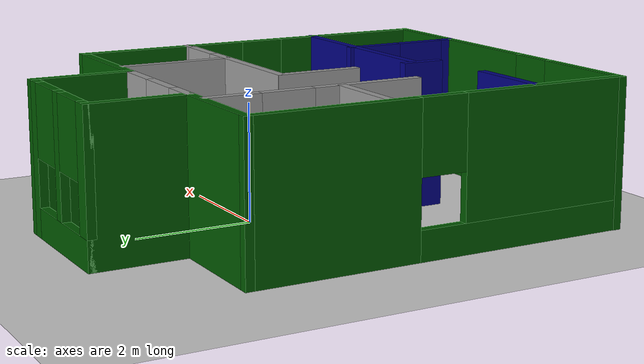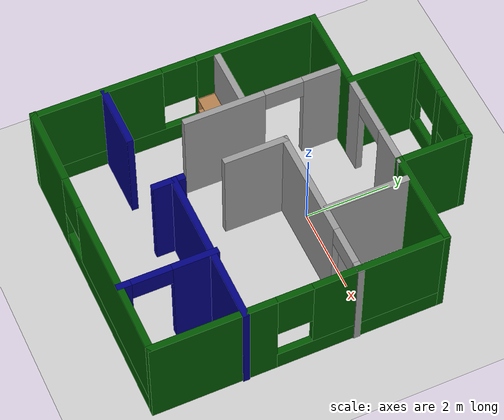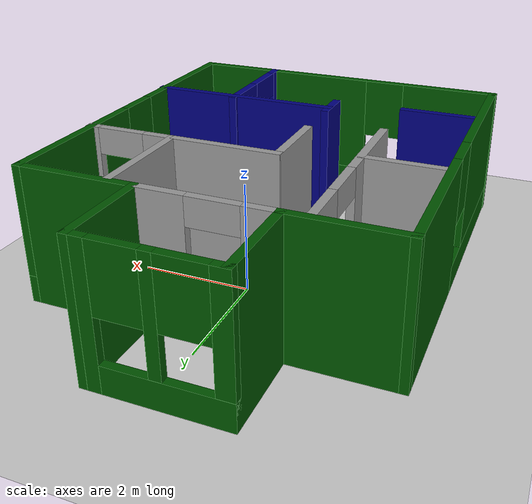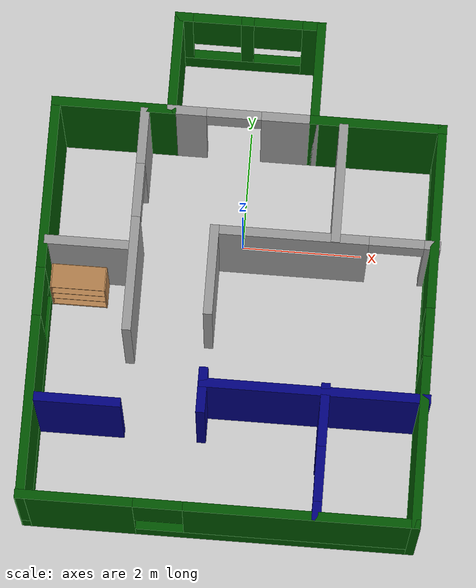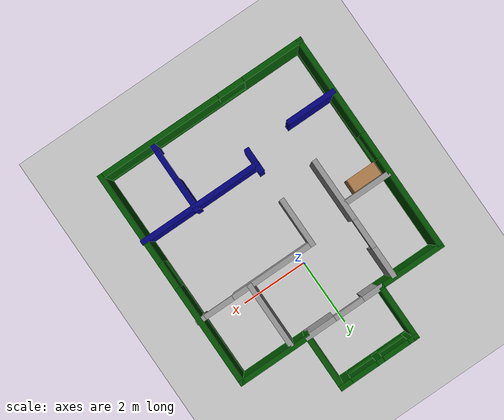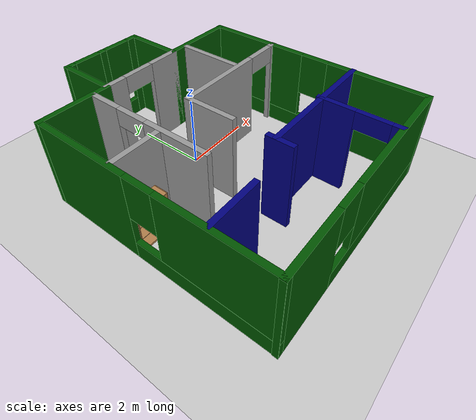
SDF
<sdf version="1.6">
 <world name="default">
  <model name="ground_plane">
   <static>1</static>
   <link name="link">
    <collision name="collision">
     <geometry><plane><normal>0 0 1</normal><size>100 100</size></plane></geometry>
     <surface>
      <contact><collide_bitmask>65535</collide_bitmask></contact>
      <friction><ode><mu>100</mu><mu2>50</mu2></ode></friction>
     </surface>
    </collision>
    <visual name="visual">
     <cast_shadows>0</cast_shadows>
     <geometry><plane><normal>0 0 1</normal><size>100 100</size></plane></geometry>
     <material>
      <script><uri>file://media/materials/scripts/gazebo.material</uri><name>Gazebo/Grey</name></script>
     </material>
    </visual>
   </link>
  </model>
  <model name="house">
   <pose>-0.016749 -0.865933 0 0 -0 0</pose>
   <link name="Wall_10">
    <collision name="Wall_10_Collision">
     <geometry><box><size>2.25 0.15 2.5</size></box></geometry>
     <pose>0 0 1.25 0 -0 0</pose>
    </collision>
    <visual name="Wall_10_Visual">
     <pose>0 0 1.25 0 -0 0</pose>
     <geometry><box><size>2.25 0.15 2.5</size></box></geometry>
     <material>
      <script><uri>file://media/materials/scripts/gazebo.material</uri><name>Gazebo/Grey</name></script>
      <ambient>0 0.333333 0 1</ambient>
     </material>
     <meta><layer>0</layer></meta>
    </visual>
    <pose>2.11595 2.48106 0 0 -0 3.14159</pose>
   </link>
   <link name="Wall_11">
    <collision name="Wall_11_Collision">
     <geometry><box><size>1.75 0.15 2.5</size></box></geometry>
     <pose>0 0 1.25 0 -0 0</pose>
    </collision>
    <visual name="Wall_11_Visual">
     <pose>0 0 1.25 0 -0 0</pose>
     <geometry><box><size>1.75 0.15 2.5</size></box></geometry>
     <material>
      <script><uri>file://media/materials/scripts/gazebo.material</uri><name>Gazebo/Grey</name></script>
      <ambient>0 0.333333 0 1</ambient>
     </material>
     <meta><layer>0</layer></meta>
    </visual>
    <pose>1.06595 3.28106 0 0 -0 1.5708</pose>
   </link>
   <link name="Wall_12">
    <pose>-0.10905 4.08106 0 0 -0 3.14159</pose>
    <visual name="Wall_12_Visual_0">
     <pose>-1.05634 0 1.25 0 -0 0</pose>
     <geometry><box><size>0.387325 0.15 2.5</size></box></geometry>
     <material>
      <script><uri>file://media/materials/scripts/gazebo.material</uri><name>Gazebo/Grey</name></script>
      <ambient>0 0.333333 0 1</ambient>
     </material>
     <meta><layer>0</layer></meta>
    </visual>
    <collision name="Wall_12_Collision_0">
     <geometry><box><size>0.387325 0.15 2.5</size></box></geometry>
     <pose>-1.05634 0 1.25 0 -0 0</pose>
    </collision>
    <visual name="Wall_12_Visual_1">
     <pose>0.193662 0 0.25 0 -0 0</pose>
     <geometry><box><size>2.11267 0.15 0.5</size></box></geometry>
     <material>
      <script><uri>file://media/materials/scripts/gazebo.material</uri><name>Gazebo/Grey</name></script>
      <ambient>0 0.333333 0 1</ambient>
     </material>
     <meta><layer>0</layer></meta>
    </visual>
    <collision name="Wall_12_Collision_1">
     <geometry><box><size>2.11267 0.15 0.5</size></box></geometry>
     <pose>0.193662 0 0.25 0 -0 0</pose>
    </collision>
    <visual name="Wall_12_Visual_2">
     <pose>0.041554 0 1.5 0 -0 0</pose>
     <geometry><box><size>0.208458 0.15 2</size></box></geometry>
     <material>
      <script><uri>file://media/materials/scripts/gazebo.material</uri><name>Gazebo/Grey</name></script>
      <ambient>0 0.333333 0 1</ambient>
     </material>
     <meta><layer>0</layer></meta>
    </visual>
    <collision name="Wall_12_Collision_2">
     <geometry><box><size>0.208458 0.15 2</size></box></geometry>
     <pose>0.041554 0 1.5 0 -0 0</pose>
    </collision>
    <visual name="Wall_12_Visual_3">
     <pose>1.09789 0 1.5 0 -0 0</pose>
     <geometry><box><size>0.304217 0.15 2</size></box></geometry>
     <material>
      <script><uri>file://media/materials/scripts/gazebo.material</uri><name>Gazebo/Grey</name></script>
      <ambient>0 0.333333 0 1</ambient>
     </material>
     <meta><layer>0</layer></meta>
    </visual>
    <collision name="Wall_12_Collision_3">
     <geometry><box><size>0.304217 0.15 2</size></box></geometry>
     <pose>1.09789 0 1.5 0 -0 0</pose>
    </collision>
    <visual name="Wall_12_Visual_4">
     <pose>-0.462675 0 1.9 0 -0 0</pose>
     <geometry><box><size>0.8 0.15 1.2</size></box></geometry>
     <material>
      <script><uri>file://media/materials/scripts/gazebo.material</uri><name>Gazebo/Grey</name></script>
      <ambient>0 0.333333 0 1</ambient>
     </material>
     <meta><layer>0</layer></meta>
    </visual>
    <collision name="Wall_12_Collision_4">
     <geometry><box><size>0.8 0.15 1.2</size></box></geometry>
     <pose>-0.462675 0 1.9 0 -0 0</pose>
    </collision>
    <visual name="Wall_12_Visual_5">
     <pose>0.545783 0 1.9 0 -0 0</pose>
     <geometry><box><size>0.8 0.15 1.2</size></box></geometry>
     <material>
      <script><uri>file://media/materials/scripts/gazebo.material</uri><name>Gazebo/Grey</name></script>
      <ambient>0 0.333333 0 1</ambient>
     </material>
     <meta><layer>0</layer></meta>
    </visual>
    <collision name="Wall_12_Collision_5">
     <geometry><box><size>0.8 0.15 1.2</size></box></geometry>
     <pose>0.545783 0 1.9 0 -0 0</pose>
    </collision>
   </link>
   <link name="Wall_13">
    <collision name="Wall_13_Collision">
     <geometry><box><size>1.75 0.15 2.5</size></box></geometry>
     <pose>0 0 1.25 0 -0 0</pose>
    </collision>
    <visual name="Wall_13_Visual">
     <pose>0 0 1.25 0 -0 0</pose>
     <geometry><box><size>1.75 0.15 2.5</size></box></geometry>
     <material>
      <script><uri>file://media/materials/scripts/gazebo.material</uri><name>Gazebo/Grey</name></script>
      <ambient>0 0.333333 0 1</ambient>
     </material>
     <meta><layer>0</layer></meta>
    </visual>
    <pose>-1.28405 3.28106 0 0 -0 -1.5708</pose>
   </link>
   <link name="Wall_14">
    <collision name="Wall_14_Collision">
     <geometry><box><size>2.05 0.15 2.5</size></box></geometry>
     <pose>0 0 1.25 0 -0 0</pose>
    </collision>
    <visual name="Wall_14_Visual">
     <pose>0 0 1.25 0 -0 0</pose>
     <geometry><box><size>2.05 0.15 2.5</size></box></geometry>
     <material>
      <script><uri>file://media/materials/scripts/gazebo.material</uri><name>Gazebo/Grey</name></script>
      <ambient>0 0.333333 0 1</ambient>
     </material>
     <meta><layer>0</layer></meta>
    </visual>
    <pose>-2.23405 2.48106 0 0 -0 3.14159</pose>
   </link>
   <link name="Wall_15">
    <pose>-3.18405 -0.799958 0 0 -0 -1.5708</pose>
    <visual name="Wall_15_Visual_0">
     <pose>-1.90849 0 1.25 0 -0 0</pose>
     <geometry><box><size>2.89522 0.15 2.5</size></box></geometry>
     <material>
      <script><uri>file://media/materials/scripts/gazebo.material</uri><name>Gazebo/Grey</name></script>
      <ambient>0 0.333333 0 1</ambient>
     </material>
     <meta><layer>0</layer></meta>
    </visual>
    <collision name="Wall_15_Collision_0">
     <geometry><box><size>2.89522 0.15 2.5</size></box></geometry>
     <pose>-1.90849 0 1.25 0 -0 0</pose>
    </collision>
    <visual name="Wall_15_Visual_1">
     <pose>1.44761 0 0.25 0 -0 0</pose>
     <geometry><box><size>3.81698 0.15 0.5</size></box></geometry>
     <material>
      <script><uri>file://media/materials/scripts/gazebo.material</uri><name>Gazebo/Grey</name></script>
      <ambient>0 0.333333 0 1</ambient>
     </material>
     <meta><layer>0</layer></meta>
    </visual>
    <collision name="Wall_15_Collision_1">
     <geometry><box><size>3.81698 0.15 0.5</size></box></geometry>
     <pose>1.44761 0 0.25 0 -0 0</pose>
    </collision>
    <visual name="Wall_15_Visual_2">
     <pose>1.84761 0 1.5 0 -0 0</pose>
     <geometry><box><size>3.01699 0.15 2</size></box></geometry>
     <material>
      <script><uri>file://media/materials/scripts/gazebo.material</uri><name>Gazebo/Grey</name></script>
      <ambient>0 0.333333 0 1</ambient>
     </material>
     <meta><layer>0</layer></meta>
    </visual>
    <collision name="Wall_15_Collision_2">
     <geometry><box><size>3.01699 0.15 2</size></box></geometry>
     <pose>1.84761 0 1.5 0 -0 0</pose>
    </collision>
    <visual name="Wall_15_Visual_3">
     <pose>-0.060885 0 1.9 0 -0 0</pose>
     <geometry><box><size>0.8 0.15 1.2</size></box></geometry>
     <material>
      <script><uri>file://media/materials/scripts/gazebo.material</uri><name>Gazebo/Grey</name></script>
      <ambient>0 0.333333 0 1</ambient>
     </material>
     <meta><layer>0</layer></meta>
    </visual>
    <collision name="Wall_15_Collision_3">
     <geometry><box><size>0.8 0.15 1.2</size></box></geometry>
     <pose>-0.060885 0 1.9 0 -0 0</pose>
    </collision>
   </link>
   <link name="Wall_18">
    <pose>-0.10905 2.48106 0 0 -0 0</pose>
    <visual name="Wall_18_Visual_0">
     <pose>-0.923545 0 1.25 0 -0 0</pose>
     <geometry><box><size>0.65291 0.15 2.5</size></box></geometry>
     <material>
      <script><uri>file://media/materials/scripts/gazebo.material</uri><name>Gazebo/Grey</name></script>
      <ambient>1 1 1 1</ambient>
     </material>
     <meta><layer>0</layer></meta>
    </visual>
    <collision name="Wall_18_Collision_0">
     <geometry><box><size>0.65291 0.15 2.5</size></box></geometry>
     <pose>-0.923545 0 1.25 0 -0 0</pose>
    </collision>
    <visual name="Wall_18_Visual_1">
     <pose>0.776455 0 1.25 0 -0 0</pose>
     <geometry><box><size>0.94709 0.15 2.5</size></box></geometry>
     <material>
      <script><uri>file://media/materials/scripts/gazebo.material</uri><name>Gazebo/Grey</name></script>
      <ambient>1 1 1 1</ambient>
     </material>
     <meta><layer>0</layer></meta>
    </visual>
    <collision name="Wall_18_Collision_1">
     <geometry><box><size>0.94709 0.15 2.5</size></box></geometry>
     <pose>0.776455 0 1.25 0 -0 0</pose>
    </collision>
    <visual name="Wall_18_Visual_2">
     <pose>-0.14709 0 2.25 0 -0 0</pose>
     <geometry><box><size>0.9 0.15 0.5</size></box></geometry>
     <material>
      <script><uri>file://media/materials/scripts/gazebo.material</uri><name>Gazebo/Grey</name></script>
      <ambient>1 1 1 1</ambient>
     </material>
     <meta><layer>0</layer></meta>
    </visual>
    <collision name="Wall_18_Collision_2">
     <geometry><box><size>0.9 0.15 0.5</size></box></geometry>
     <pose>-0.14709 0 2.25 0 -0 0</pose>
    </collision>
   </link>
   <link name="Wall_20">
    <pose>1.38768 0.513735 0 0 -0 3.14159</pose>
    <visual name="Wall_20_Visual_0">
     <pose>-1.74188 0 1.25 0 -0 0</pose>
     <geometry><box><size>0.266242 0.15 2.5</size></box></geometry>
     <material>
      <script><uri>file://media/materials/scripts/gazebo.material</uri><name>Gazebo/Grey</name></script>
      <ambient>1 1 1 1</ambient>
     </material>
     <meta><layer>0</layer></meta>
    </visual>
    <collision name="Wall_20_Collision_0">
     <geometry><box><size>0.266242 0.15 2.5</size></box></geometry>
     <pose>-1.74188 0 1.25 0 -0 0</pose>
    </collision>
    <visual name="Wall_20_Visual_1">
     <pose>0.583121 0 1.25 0 -0 0</pose>
     <geometry><box><size>2.58376 0.15 2.5</size></box></geometry>
     <material>
      <script><uri>file://media/materials/scripts/gazebo.material</uri><name>Gazebo/Grey</name></script>
      <ambient>1 1 1 1</ambient>
     </material>
     <meta><layer>0</layer></meta>
    </visual>
    <collision name="Wall_20_Collision_1">
     <geometry><box><size>2.58376 0.15 2.5</size></box></geometry>
     <pose>0.583121 0 1.25 0 -0 0</pose>
    </collision>
    <visual name="Wall_20_Visual_2">
     <pose>-1.15876 0 2.25 0 -0 0</pose>
     <geometry><box><size>0.9 0.15 0.5</size></box></geometry>
     <material>
      <script><uri>file://media/materials/scripts/gazebo.material</uri><name>Gazebo/Grey</name></script>
      <ambient>1 1 1 1</ambient>
     </material>
     <meta><layer>0</layer></meta>
    </visual>
    <collision name="Wall_20_Collision_2">
     <geometry><box><size>0.9 0.15 0.5</size></box></geometry>
     <pose>-1.15876 0 2.25 0 -0 0</pose>
    </collision>
   </link>
   <link name="Wall_21">
    <collision name="Wall_21_Collision">
     <geometry><box><size>1.5 0.15 2.5</size></box></geometry>
     <pose>0 0 1.25 0 -0 0</pose>
    </collision>
    <visual name="Wall_21_Visual">
     <pose>0 0 1.25 0 -0 0</pose>
     <geometry><box><size>1.5 0.15 2.5</size></box></geometry>
     <material>
      <script><uri>file://media/materials/scripts/gazebo.material</uri><name>Gazebo/Grey</name></script>
      <ambient>1 1 1 1</ambient>
     </material>
     <meta><layer>0</layer></meta>
    </visual>
    <pose>-0.42405 -0.161265 0 0 -0 -1.5708</pose>
   </link>
   <link name="Wall_24">
    <collision name="Wall_24_Collision">
     <geometry><box><size>0.75 0.15 2.5</size></box></geometry>
     <pose>0 0 1.25 0 -0 0</pose>
    </collision>
    <visual name="Wall_24_Visual">
     <pose>0 0 1.25 0 -0 0</pose>
     <geometry><box><size>0.75 0.15 2.5</size></box></geometry>
     <material>
      <script><uri>file://media/materials/scripts/gazebo.material</uri><name>Gazebo/Grey</name></script>
      <ambient>0 0 0.498039 1</ambient>
     </material>
     <meta><layer>0</layer></meta>
    </visual>
    <pose>-0.415776 -2.15984 0 0 -0 -1.5708</pose>
   </link>
   <link name="Wall_36">
    <collision name="Wall_36_Collision">
     <geometry><box><size>1.5 0.15 2.5</size></box></geometry>
     <pose>0 0 1.25 0 -0 0</pose>
    </collision>
    <visual name="Wall_36_Visual">
     <pose>0 0 1.25 0 -0 0</pose>
     <geometry><box><size>1.5 0.15 2.5</size></box></geometry>
     <material>
      <script><uri>file://media/materials/scripts/gazebo.material</uri><name>Gazebo/Grey</name></script>
      <ambient>0 0 0.498039 1</ambient>
     </material>
     <meta><layer>0</layer></meta>
    </visual>
    <pose>-2.45376 -2.47368 0 0 -0 0</pose>
   </link>
   <link name="Wall_38">
    <pose>-1.71474 0.603069 0 0 -0 -1.5708</pose>
    <visual name="Wall_38_Visual_0">
     <pose>-1.39969 0 1.25 0 -0 0</pose>
     <geometry><box><size>0.950613 0.15 2.5</size></box></geometry>
     <material>
      <script><uri>file://media/materials/scripts/gazebo.material</uri><name>Gazebo/Grey</name></script>
      <ambient>1 1 1 1</ambient>
     </material>
     <meta><layer>0</layer></meta>
    </visual>
    <collision name="Wall_38_Collision_0">
     <geometry><box><size>0.950613 0.15 2.5</size></box></geometry>
     <pose>-1.39969 0 1.25 0 -0 0</pose>
    </collision>
    <visual name="Wall_38_Visual_1">
     <pose>0.925306 0 1.25 0 -0 0</pose>
     <geometry><box><size>1.89939 0.15 2.5</size></box></geometry>
     <material>
      <script><uri>file://media/materials/scripts/gazebo.material</uri><name>Gazebo/Grey</name></script>
      <ambient>1 1 1 1</ambient>
     </material>
     <meta><layer>0</layer></meta>
    </visual>
    <collision name="Wall_38_Collision_1">
     <geometry><box><size>1.89939 0.15 2.5</size></box></geometry>
     <pose>0.925306 0 1.25 0 -0 0</pose>
    </collision>
    <visual name="Wall_38_Visual_2">
     <pose>-0.474387 0 2.25 0 -0 0</pose>
     <geometry><box><size>0.9 0.15 0.5</size></box></geometry>
     <material>
      <script><uri>file://media/materials/scripts/gazebo.material</uri><name>Gazebo/Grey</name></script>
      <ambient>1 1 1 1</ambient>
     </material>
     <meta><layer>0</layer></meta>
    </visual>
    <collision name="Wall_38_Collision_2">
     <geometry><box><size>0.9 0.15 0.5</size></box></geometry>
     <pose>-0.474387 0 2.25 0 -0 0</pose>
    </collision>
   </link>
   <link name="Wall_40">
    <collision name="Wall_40_Collision">
     <geometry><box><size>1.5 0.15 2.5</size></box></geometry>
     <pose>0 0 1.25 0 -0 0</pose>
    </collision>
    <visual name="Wall_40_Visual">
     <pose>0 0 1.25 0 -0 0</pose>
     <geometry><box><size>1.5 0.15 2.5</size></box></geometry>
     <material>
      <script><uri>file://media/materials/scripts/gazebo.material</uri><name>Gazebo/Grey</name></script>
      <ambient>1 1 1 1</ambient>
     </material>
     <meta><layer>0</layer></meta>
    </visual>
    <pose>-2.41923 0.137532 0 0 -0 0</pose>
   </link>
   <link name="Wall_42">
    <collision name="Wall_42_Collision">
     <geometry><box><size>2 0.15 2.5</size></box></geometry>
     <pose>0 0 1.25 0 -0 0</pose>
    </collision>
    <visual name="Wall_42_Visual">
     <pose>0 0 1.25 0 -0 0</pose>
     <geometry><box><size>2 0.15 2.5</size></box></geometry>
     <material>
      <script><uri>file://media/materials/scripts/gazebo.material</uri><name>Gazebo/Grey</name></script>
      <ambient>1 1 1 1</ambient>
     </material>
     <meta><layer>0</layer></meta>
    </visual>
    <pose>1.55116 1.44868 0 0 -0 -1.5708</pose>
   </link>
   <link name="Wall_44">
    <collision name="Wall_44_Collision">
     <geometry><box><size>3.75 0.15 2.5</size></box></geometry>
     <pose>0 0 1.25 0 -0 0</pose>
    </collision>
    <visual name="Wall_44_Visual">
     <pose>0 0 1.25 0 -0 0</pose>
     <geometry><box><size>3.75 0.15 2.5</size></box></geometry>
     <material>
      <script><uri>file://media/materials/scripts/gazebo.material</uri><name>Gazebo/Grey</name></script>
      <ambient>0 0 0.498039 1</ambient>
     </material>
     <meta><layer>0</layer></meta>
    </visual>
    <pose>1.39578 -2.03829 0 0 -0 3.14159</pose>
   </link>
   <link name="Wall_46">
    <pose>1.56947 -3.02402 0 0 -0 1.5708</pose>
    <visual name="Wall_46_Visual_0">
     <pose>-0.968195 0 1.25 0 -0 0</pose>
     <geometry><box><size>0.313609 0.15 2.5</size></box></geometry>
     <material>
      <script><uri>file://media/materials/scripts/gazebo.material</uri><name>Gazebo/Grey</name></script>
      <ambient>0 0 0.498039 1</ambient>
     </material>
     <meta><layer>0</layer></meta>
    </visual>
    <collision name="Wall_46_Collision_0">
     <geometry><box><size>0.313609 0.15 2.5</size></box></geometry>
     <pose>-0.968195 0 1.25 0 -0 0</pose>
    </collision>
    <visual name="Wall_46_Visual_1">
     <pose>0.606805 0 1.25 0 -0 0</pose>
     <geometry><box><size>1.03639 0.15 2.5</size></box></geometry>
     <material>
      <script><uri>file://media/materials/scripts/gazebo.material</uri><name>Gazebo/Grey</name></script>
      <ambient>0 0 0.498039 1</ambient>
     </material>
     <meta><layer>0</layer></meta>
    </visual>
    <collision name="Wall_46_Collision_1">
     <geometry><box><size>1.03639 0.15 2.5</size></box></geometry>
     <pose>0.606805 0 1.25 0 -0 0</pose>
    </collision>
    <visual name="Wall_46_Visual_2">
     <pose>-0.361391 0 2.25 0 -0 0</pose>
     <geometry><box><size>0.9 0.15 0.5</size></box></geometry>
     <material>
      <script><uri>file://media/materials/scripts/gazebo.material</uri><name>Gazebo/Grey</name></script>
      <ambient>0 0 0.498039 1</ambient>
     </material>
     <meta><layer>0</layer></meta>
    </visual>
    <collision name="Wall_46_Collision_2">
     <geometry><box><size>0.9 0.15 0.5</size></box></geometry>
     <pose>-0.361391 0 2.25 0 -0 0</pose>
    </collision>
   </link>
   <link name="Wall_8">
    <pose>-0.020776 -4.08097 0 0 -0 0</pose>
    <visual name="Wall_8_Visual_0">
     <pose>-2.3025 0 1.25 0 -0 0</pose>
     <geometry><box><size>1.895 0.15 2.5</size></box></geometry>
     <material>
      <script><uri>file://media/materials/scripts/gazebo.material</uri><name>Gazebo/Grey</name></script>
      <ambient>0 0.333333 0 1</ambient>
     </material>
     <meta><layer>0</layer></meta>
    </visual>
    <collision name="Wall_8_Collision_0">
     <geometry><box><size>1.895 0.15 2.5</size></box></geometry>
     <pose>-2.3025 0 1.25 0 -0 0</pose>
    </collision>
    <visual name="Wall_8_Visual_1">
     <pose>0.9475 0 0.25 0 -0 0</pose>
     <geometry><box><size>4.605 0.15 0.5</size></box></geometry>
     <material>
      <script><uri>file://media/materials/scripts/gazebo.material</uri><name>Gazebo/Grey</name></script>
      <ambient>0 0.333333 0 1</ambient>
     </material>
     <meta><layer>0</layer></meta>
    </visual>
    <collision name="Wall_8_Collision_1">
     <geometry><box><size>4.605 0.15 0.5</size></box></geometry>
     <pose>0.9475 0 0.25 0 -0 0</pose>
    </collision>
    <visual name="Wall_8_Visual_2">
     <pose>1.3475 0 1.5 0 -0 0</pose>
     <geometry><box><size>3.805 0.15 2</size></box></geometry>
     <material>
      <script><uri>file://media/materials/scripts/gazebo.material</uri><name>Gazebo/Grey</name></script>
      <ambient>0 0.333333 0 1</ambient>
     </material>
     <meta><layer>0</layer></meta>
    </visual>
    <collision name="Wall_8_Collision_2">
     <geometry><box><size>3.805 0.15 2</size></box></geometry>
     <pose>1.3475 0 1.5 0 -0 0</pose>
    </collision>
    <visual name="Wall_8_Visual_3">
     <pose>-0.955 0 1.9 0 -0 0</pose>
     <geometry><box><size>0.8 0.15 1.2</size></box></geometry>
     <material>
      <script><uri>file://media/materials/scripts/gazebo.material</uri><name>Gazebo/Grey</name></script>
      <ambient>0 0.333333 0 1</ambient>
     </material>
     <meta><layer>0</layer></meta>
    </visual>
    <collision name="Wall_8_Collision_3">
     <geometry><box><size>0.8 0.15 1.2</size></box></geometry>
     <pose>-0.955 0 1.9 0 -0 0</pose>
    </collision>
   </link>
   <link name="Wall_9">
    <pose>3.16595 -0.799958 0 0 -0 1.5708</pose>
    <visual name="Wall_9_Visual_0">
     <pose>-1.94232 0 1.25 0 -0 0</pose>
     <geometry><box><size>2.82757 0.15 2.5</size></box></geometry>
     <material>
      <script><uri>file://media/materials/scripts/gazebo.material</uri><name>Gazebo/Grey</name></script>
      <ambient>0 0.333333 0 1</ambient>
     </material>
     <meta><layer>0</layer></meta>
    </visual>
    <collision name="Wall_9_Collision_0">
     <geometry><box><size>2.82757 0.15 2.5</size></box></geometry>
     <pose>-1.94232 0 1.25 0 -0 0</pose>
    </collision>
    <visual name="Wall_9_Visual_1">
     <pose>1.41378 0 0.25 0 -0 0</pose>
     <geometry><box><size>3.88463 0.15 0.5</size></box></geometry>
     <material>
      <script><uri>file://media/materials/scripts/gazebo.material</uri><name>Gazebo/Grey</name></script>
      <ambient>0 0.333333 0 1</ambient>
     </material>
     <meta><layer>0</layer></meta>
    </visual>
    <collision name="Wall_9_Collision_1">
     <geometry><box><size>3.88463 0.15 0.5</size></box></geometry>
     <pose>1.41378 0 0.25 0 -0 0</pose>
    </collision>
    <visual name="Wall_9_Visual_2">
     <pose>1.81378 0 1.5 0 -0 0</pose>
     <geometry><box><size>3.08464 0.15 2</size></box></geometry>
     <material>
      <script><uri>file://media/materials/scripts/gazebo.material</uri><name>Gazebo/Grey</name></script>
      <ambient>0 0.333333 0 1</ambient>
     </material>
     <meta><layer>0</layer></meta>
    </visual>
    <collision name="Wall_9_Collision_2">
     <geometry><box><size>3.08464 0.15 2</size></box></geometry>
     <pose>1.81378 0 1.5 0 -0 0</pose>
    </collision>
    <visual name="Wall_9_Visual_3">
     <pose>-0.128535 0 1.9 0 -0 0</pose>
     <geometry><box><size>0.8 0.15 1.2</size></box></geometry>
     <material>
      <script><uri>file://media/materials/scripts/gazebo.material</uri><name>Gazebo/Grey</name></script>
      <ambient>0 0.333333 0 1</ambient>
     </material>
     <meta><layer>0</layer></meta>
    </visual>
    <collision name="Wall_9_Collision_3">
     <geometry><box><size>0.8 0.15 1.2</size></box></geometry>
     <pose>-0.128535 0 1.9 0 -0 0</pose>
    </collision>
   </link>
   <static>1</static>
  </model>
  <model name="bookshelf">
   <static>1</static>
   <link name="link">
    <inertial><mass>1</mass></inertial>
    <collision name="back">
     <pose>0 0.005 0.6 0 -0 0</pose>
     <geometry><box><size>0.9 0.01 1.2</size></box></geometry>
    </collision>
    <visual name="visual1">
     <pose>0 0.005 0.6 0 -0 0</pose>
     <geometry><box><size>0.9 0.01 1.2</size></box></geometry>
     <material>
      <script><uri>file://media/materials/scripts/gazebo.material</uri><name>Gazebo/Wood</name></script>
     </material>
    </visual>
    <collision name="left_side">
     <pose>0.45 -0.195 0.6 0 -0 0</pose>
     <geometry><box><size>0.02 0.4 1.2</size></box></geometry>
    </collision>
    <visual name="visual2">
     <pose>0.45 -0.195 0.6 0 -0 0</pose>
     <geometry><box><size>0.02 0.4 1.2</size></box></geometry>
     <material>
      <script><uri>file://media/materials/scripts/gazebo.material</uri><name>Gazebo/Wood</name></script>
     </material>
    </visual>
    <collision name="right_side">
     <pose>-0.45 -0.195 0.6 0 -0 0</pose>
     <geometry><box><size>0.02 0.4 1.2</size></box></geometry>
    </collision>
    <visual name="visual3">
     <pose>-0.45 -0.195 0.6 0 -0 0</pose>
     <geometry><box><size>0.02 0.4 1.2</size></box></geometry>
     <material>
      <script><uri>file://media/materials/scripts/gazebo.material</uri><name>Gazebo/Wood</name></script>
     </material>
    </visual>
    <collision name="bottom">
     <pose>0 -0.195 0.03 0 -0 0</pose>
     <geometry><box><size>0.88 0.4 0.06</size></box></geometry>
    </collision>
    <visual name="visual4">
     <pose>0 -0.195 0.03 0 -0 0</pose>
     <geometry><box><size>0.88 0.4 0.06</size></box></geometry>
     <material>
      <script><uri>file://media/materials/scripts/gazebo.material</uri><name>Gazebo/Wood</name></script>
     </material>
    </visual>
    <collision name="top">
     <pose>0 -0.195 1.19 0 -0 0</pose>
     <geometry><box><size>0.88 0.4 0.02</size></box></geometry>
    </collision>
    <visual name="visual5">
     <pose>0 -0.195 1.19 0 -0 0</pose>
     <geometry><box><size>0.88 0.4 0.02</size></box></geometry>
     <material>
      <script><uri>file://media/materials/scripts/gazebo.material</uri><name>Gazebo/Wood</name></script>
     </material>
    </visual>
    <collision name="low_shelf">
     <pose>0 -0.195 0.43 0 -0 0</pose>
     <geometry><box><size>0.88 0.4 0.02</size></box></geometry>
    </collision>
    <visual name="visual6">
     <pose>0 -0.195 0.43 0 -0 0</pose>
     <geometry><box><size>0.88 0.4 0.02</size></box></geometry>
     <material>
      <script><uri>file://media/materials/scripts/gazebo.material</uri><name>Gazebo/Wood</name></script>
     </material>
    </visual>
    <collision name="high_shelf">
     <pose>0 -0.195 0.8 0 -0 0</pose>
     <geometry><box><size>0.88 0.4 0.02</size></box></geometry>
    </collision>
    <visual name="visual7">
     <pose>0 -0.195 0.8 0 -0 0</pose>
     <geometry><box><size>0.88 0.4 0.02</size></box></geometry>
     <material>
      <script><uri>file://media/materials/scripts/gazebo.material</uri><name>Gazebo/Wood</name></script>
     </material>
    </visual>
   </link>
   <pose>-2.65166 -0.817927 0 0 -0 0</pose>
  </model>
 </world>
</sdf>
